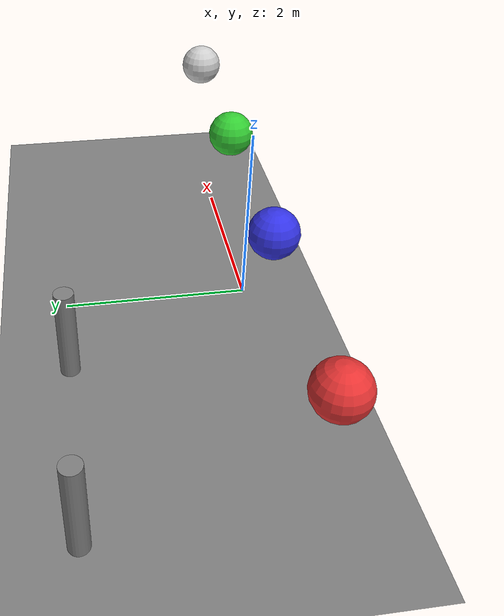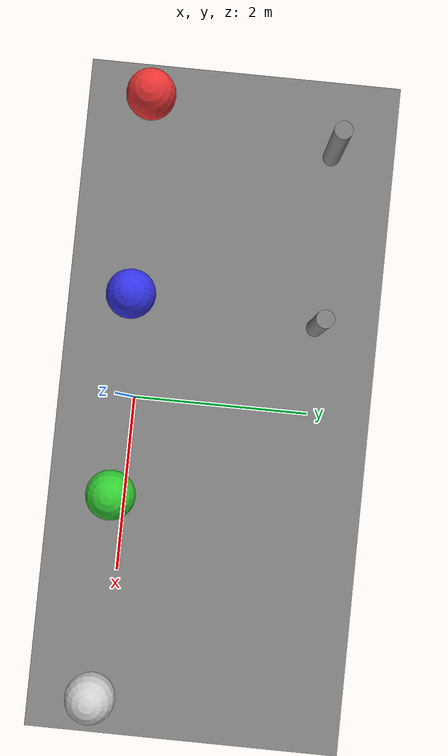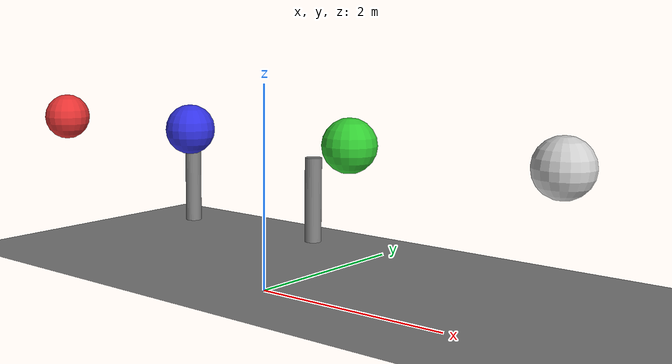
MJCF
<!-- contype/conaffinity碰撞掩码演示 -->
<mujoco model="collision_mask">
    <compiler angle="radian"/>
    <option timestep="0.002" gravity="0 0 -9.81"/>

    <visual>
        <global realtime="1"/>
        <quality shadowsize="1024"/>
        <headlight diffuse="1 1 1" specular="0.5 0.5 0.5" active="1"/>
    </visual>

    <asset>
        <texture name="grid" type="2d" builtin="checker" width="512" height="512"
                 rgb1=".2 .2 .2" rgb2=".8 .8 .8"/>
        <material name="grid" texture="grid"/>
    </asset>

    <!--
    碰撞规则:
    - contype=0 或 conaffinity=0 → 无碰撞
    - 红色球: 只与contype包含bit0(即1)的物体碰撞
    - 蓝色球: 只与contype包含bit1(即2)的物体碰撞
    - contype=15 (bit0-3全开) → 能与任何非0 conaffinity的物体碰撞
    -->
    <worldbody>
        <geom name="floor" type="plane" size="20 20 .01" material="grid" condim="3"
              contype="1" conaffinity="15"/>

        <!-- 红色球: contype=1(b0001), conaffinity=1(b0001) —— 只与affinity含bit0的碰撞 -->
        <body pos="-3 0 1.5">
            <freejoint/>
            <geom type="sphere" size="0.25" rgba=".9 .2 .2 1"
                  contype="1" conaffinity="1"/>
        </body>

        <!-- 蓝色球: contype=2(b0010), conaffinity=2(b0010) —— 只与affinity含bit1的碰撞 -->
        <body pos="-1 0 1.5">
            <freejoint/>
            <geom type="sphere" size="0.25" rgba=".2 .2 .9 1"
                  contype="2" conaffinity="2"/>
        </body>

        <!-- 绿色球: contype=0 —— 不与其他物体碰撞（幽灵物体） -->
        <body pos="1 0 1.5">
            <freejoint/>
            <geom type="sphere" size="0.25" rgba=".2 .8 .2 1"
                  contype="0" conaffinity="15"/>
        </body>

        <!-- 白色球: contype=3(b0011), conaffinity=15 —— 与所有物体碰撞 -->
        <body pos="3 0 1.5">
            <freejoint/>
            <geom type="sphere" size="0.25" rgba=".8 .8 .8 1"
                  contype="3" conaffinity="15"/>
        </body>

        <!-- 障碍柱: contype=1, conaffinity=15 —— 只与红色和白色碰撞 -->
        <body pos="-3 2 .5">
            <geom type="cylinder" size="0.1 0.5" rgba=".5 .5 .5 1"
                  contype="1" conaffinity="15"/>
        </body>
        <body pos="-1 2 .5">
            <geom type="cylinder" size="0.1 0.5" rgba=".5 .5 .5 1"
                  contype="1" conaffinity="15"/>
        </body>
    </worldbody>
</mujoco>
